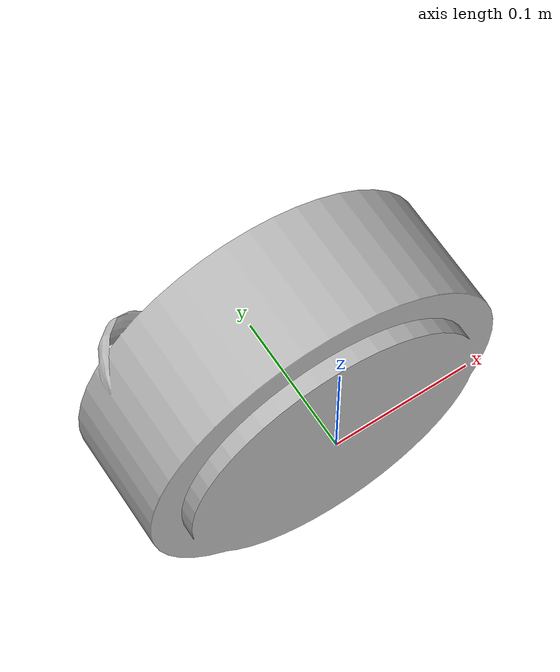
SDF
<?xml version="1.0" ?>
<sdf version="1.4">
    <model name="basket">
      <link name="body">
        <visual name="visual">
          <geometry>
            <mesh><uri>model://basket/basket.dae</uri></mesh>
          </geometry>
        </visual>
        <collision name="basket">
          <pose>0 0.0485 0 1.5708 0 0</pose>
          <geometry>
            <cylinder>
              <radius>0.13</radius>
              <length>0.097</length>
            </cylinder>
          </geometry>
          <surface>
            <friction>
              <ode>
                <mu>100</mu>
                <mu2>50</mu2>
              </ode>
            </friction>
          </surface>
        </collision>
      </link>
    </model>
</sdf>
